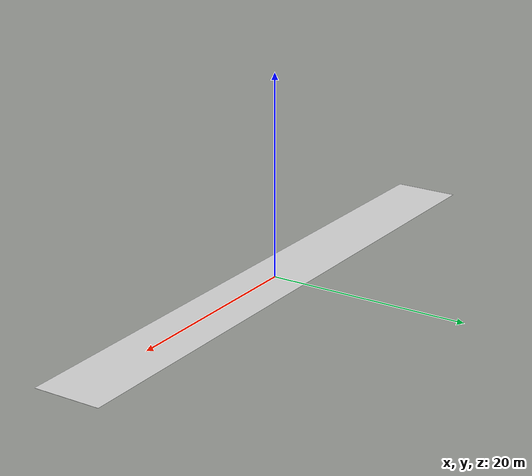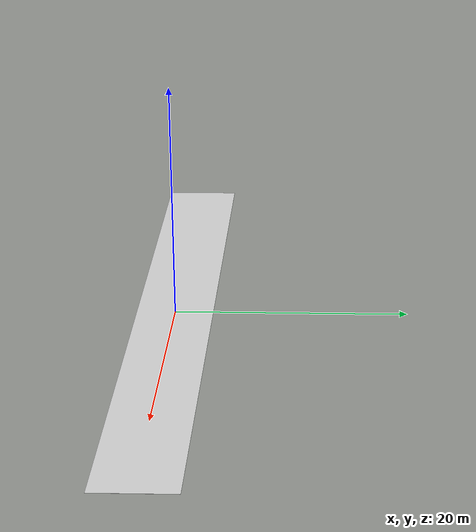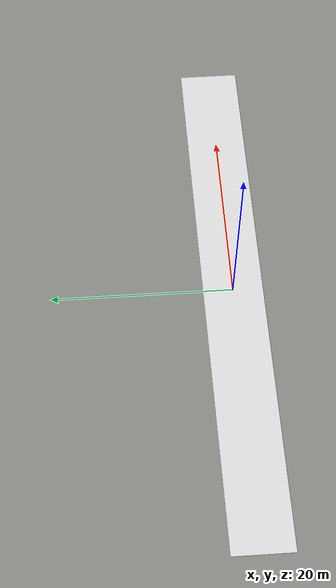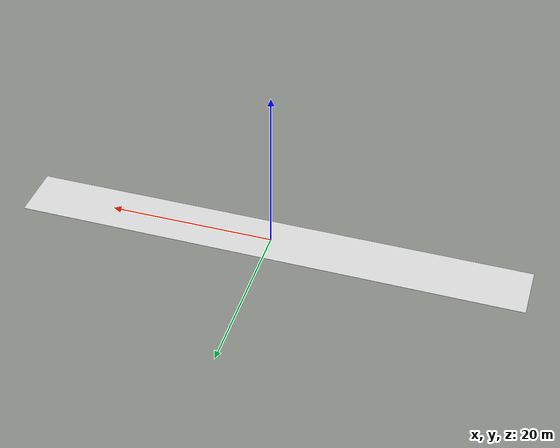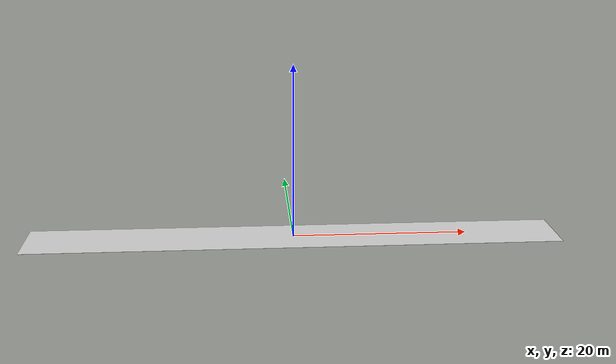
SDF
<?xml version='1.0'?>
<sdf version="1.6">
<model name="long_white_lane_map">
  <pose>0 0 0 0 0 0</pose>
    <link name="link">
      <visual name="visual">
        <geometry>
          <box>
            <size>61.0 6.62 0.01</size>
          </box>
        </geometry>
	<material>
          <script>
            <uri>model://long_white_lane_map/materials/long_white_lane_map.material</uri>
            <name>long_white_lane_map</name>
          </script>
        </material>
      </visual>
    </link>
    <static>1</static>
  </model>
</sdf>
